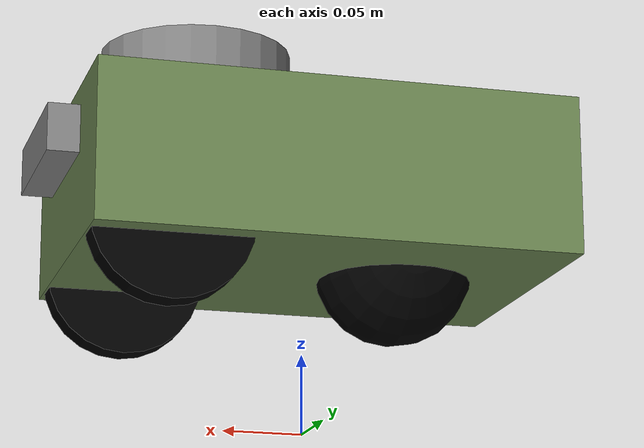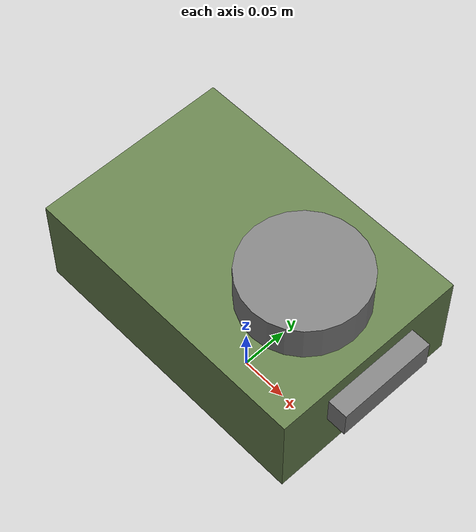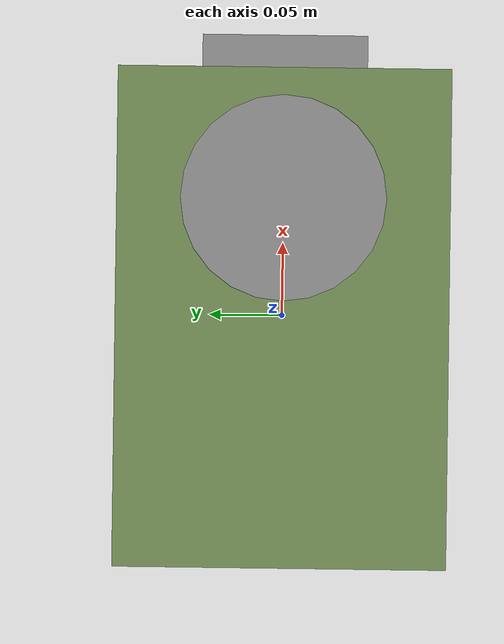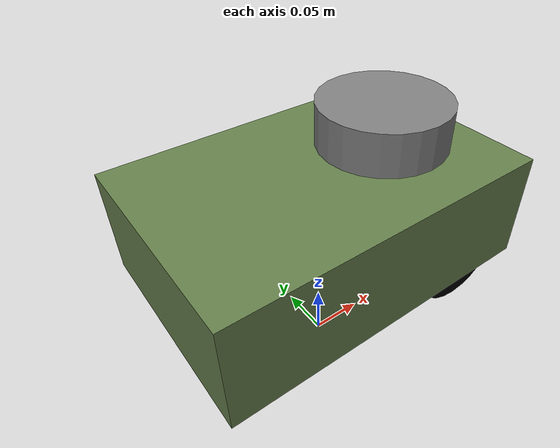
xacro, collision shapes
<?xml version="1.0"?>
<robot name="robot-file" xmlns:xacro="http://www.ros.org/wiki/xacro">

    <xacro:include filename="$(find ros2-robot)/urdf/robot.gazebo.xacro"/>
    <xacro:arg name="mesh_path" default="package://ros2-robot/meshes/"/>

    <xacro:property name="base_width" value="0.20"/>
    <xacro:property name="base_height" value="0.10"/>
    <xacro:property name="base_length"  value="0.30"/>
    <xacro:property name="base_mass"   value="3.0"/>

    <xacro:property name="wheel_radius" value="0.05"/>
    <xacro:property name="wheel_length" value="0.02"/>
    <xacro:property name="wheel_mass"   value="0.5"/>

    <xacro:property name="wheel_x_offset" value="0.10"/>
    <xacro:property name="wheel_y_offset" value="0.075"/>
    <xacro:property name="wheel_z_offset" value="-0.04"/>

    <xacro:property name="caster_radius" value="0.05"/>
    <xacro:property name="caster_mass" value="0.03"/>
    <xacro:property name="caster_x_offset" value="0.06"/>
    <xacro:property name="caster_y_offset" value="0.00"/>
    <xacro:property name="caster_z_offset" value="-0.04"/>

    <xacro:property name="lidar_radius" value="0.06"/>
    <xacro:property name="lidar_length" value="0.04"/>
    <xacro:property name="lidar_mass"   value="0.1"/>
    <xacro:property name="lidar_z_offset" value="0.07"/>
    <xacro:property name="lidar_y_offset" value="0.00"/>
    <xacro:property name="lidar_x_offset" value="0.07"/>

    <xacro:property name="camera_mass"  value="0.1"/>
    <xacro:property name="camera_z_offset" value="0.02"/>
    <xacro:property name="camera_y_offset" value="0.0"/>
    <xacro:property name="camera_x_offset" value="0.161"/>

    <xacro:property name="base_footprint_z" value="0.15"/>

    <link name="base_footprint"/>

    <joint name="base_footprint_joint" type="fixed">
        <parent link="base_footprint"/>
        <child link="base_link"/>
        <origin xyz="0 0 ${base_footprint_z}" rpy="0 0 0"/>
    </joint>

    <link name="base_link">
        <inertial>
            <origin xyz="0 0 0" rpy="0 0 0"/>
            <mass value="${base_mass}"/>
            <inertia
               ixx="${(1/12) * base_mass * (base_width*base_width + base_height*base_height)}"
                    ixy="0.0" ixz="0.0"
                    iyy="${(1/12) * base_mass * (base_height*base_height + base_length*base_length)}"
                    iyz="0.0"
                    izz="${(1/12) * base_mass * (base_width*base_width +  base_length*base_length)}"/>
        </inertial>
        <visual>
            <geometry><box size="${base_length} ${base_width} ${base_height}"/></geometry>
            <material name="chassis_color"><color rgba="0.4 0.5 0.3 1.0"/></material>
        </visual>
        <collision>
            <geometry><box size="${base_length} ${base_width} ${base_height}"/></geometry>
        </collision>
    </link>

    <link name="lidar_link">
        <visual>
            <geometry><mesh filename="$(arg mesh_path)lidar.STL"/></geometry>
            <material name="lidar_gray"><color rgba="0.5 0.5 0.5 1.0"/></material>
        </visual>
        <collision>
            <geometry><cylinder radius="${lidar_radius}" length="${lidar_length}"/></geometry>
        </collision>
        <inertial>
            <mass value="${lidar_mass}"/>
            <inertia ixx="0.0001" ixy="0.0" ixz="0.0" iyy="0.0001" iyz="0.0" izz="0.0001"/>
        </inertial>
    </link>

    <joint name="lidar_joint" type="fixed">
        <parent link="base_link"/>
        <child link="lidar_link"/>
        <origin xyz="${lidar_x_offset} ${lidar_y_offset} ${lidar_z_offset}" rpy="0 0 0"/>
    </joint>

    <link name="camera_link">
        <visual>
            <origin xyz="0 0 0" rpy="0 0 0"/>
            <geometry>
                <mesh filename="$(arg mesh_path)zed.stl"/>
            </geometry>
            <material name="camera_black">
                <color rgba="0.5 0.5 0.5 1.0"/>
            </material>
        </visual>
        <collision>
            <origin xyz="0 0 0" rpy="0 0 0"/>
            <geometry>
                <box size="0.02 0.1 0.03"/>
            </geometry>
        </collision>
        <inertial>
            <mass value="${caster_mass}"/>
            <origin xyz="0 0 0" rpy="0 0 0"/>
            <inertia ixx="0.00005" ixy="0.0" ixz="0.0"
                     iyy="0.00005" iyz="0.0"
                     izz="0.00005"/>
        </inertial>
    </link>

    <joint name="camera_joint" type="fixed">
        <parent link="base_link"/>
        <child link="camera_link"/>
        <origin xyz="${camera_x_offset} ${camera_y_offset} ${camera_z_offset}" rpy="0 0 0"/>
    </joint>

    <link name="camera_optical_link"/>

    <joint name="camera_optical_joint" type="fixed">
        <parent link="camera_link"/>
        <child link="camera_optical_link"/>
        <origin xyz="0 0 0" rpy="-1.5708 0 -1.5708"/>
    </joint>

    <xacro:macro name="wheel" params="prefix x_reflect y_reflect">
        <link name="${prefix}_wheel_link">
            <inertial>
                <mass value="${wheel_mass}"/>
                <inertia
                    ixx="${(1/12) * wheel_mass * (3*wheel_radius*wheel_radius + wheel_length*wheel_length)}"
                    ixy="0.0" ixz="0.0"
                    iyy="${(1/12) * wheel_mass * (3*wheel_radius*wheel_radius + wheel_length*wheel_length)}"
                    iyz="0.0"
                    izz="${(1/2) * wheel_mass * (wheel_radius*wheel_radius)}"/>
            </inertial>
            <visual>
                <origin xyz="0 0 0" rpy="1.5708 0 0"/>
                <geometry><cylinder radius="${wheel_radius}" length="${wheel_length}"/></geometry>
                <material name="wheel_color"><color rgba="0.0 0.0 0.0 1.0"/></material>
            </visual>
            <collision>
                <origin xyz="0 0 0" rpy="1.5708 0 0"/>
                <geometry><cylinder radius="${wheel_radius}" length="${wheel_length}"/></geometry>
            </collision>
        </link>
        <joint name="${prefix}_wheel_joint" type="continuous">
            <parent link="base_link"/>
            <child link="${prefix}_wheel_link"/>
            <origin xyz="${x_reflect * wheel_x_offset} ${y_reflect * wheel_y_offset} ${wheel_z_offset}" rpy="0 0 0"/>
            <axis xyz="0 1 0"/>
        </joint>
    </xacro:macro>

    <xacro:macro name="caster_wheel" params="prefix x_reflect y_reflect">
        <link name="${prefix}_caster_link">
            <inertial>
                <mass value="${caster_mass}"/>
                <inertia
                    ixx="${(2/5) * caster_mass * caster_radius * caster_radius}"
                    ixy="0.0" ixz="0.0"
                    iyy="${(2/5) * caster_mass * caster_radius * caster_radius}"
                    iyz="0.0"
                    izz="${(2/5) * caster_mass * caster_radius * caster_radius}"/>
            </inertial>
            <visual>
                <origin xyz="0 0 0" rpy="1.5708 0 0"/>
                <geometry><sphere radius="${caster_radius}"/></geometry>
                <material name="caster_color"><color rgba="0.0 0.0 0.0 1.0"/></material>
            </visual>
            <collision>
                <origin xyz="0 0 0" rpy="1.5708 0 0"/>
                <geometry><sphere radius="${caster_radius}"/></geometry>
            </collision>
        </link>
        <joint name="${prefix}_caster_joint" type="fixed">
            <parent link="base_link"/>
            <child link="${prefix}_caster_link"/>
            <origin xyz="${x_reflect * caster_x_offset} ${y_reflect * caster_y_offset} ${caster_z_offset}" rpy="0 0 0"/>
            <axis xyz="0 1 0"/>
        </joint>
    </xacro:macro>

    <xacro:wheel prefix="left_front"  x_reflect="1"  y_reflect="1"/>
    <xacro:wheel prefix="right_front" x_reflect="1"  y_reflect="-1"/>

    <xacro:caster_wheel prefix="rear" x_reflect="-1" y_reflect="0"/>

</robot>
